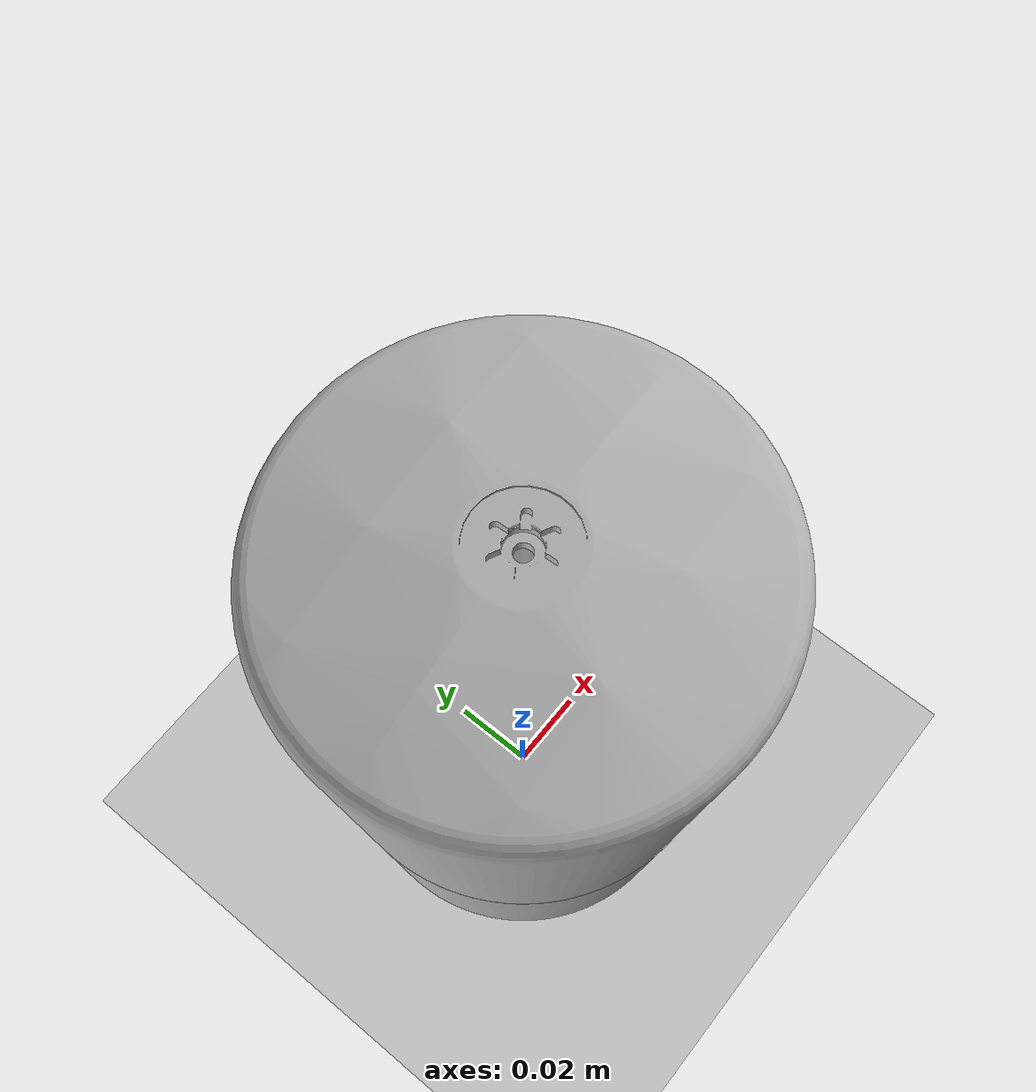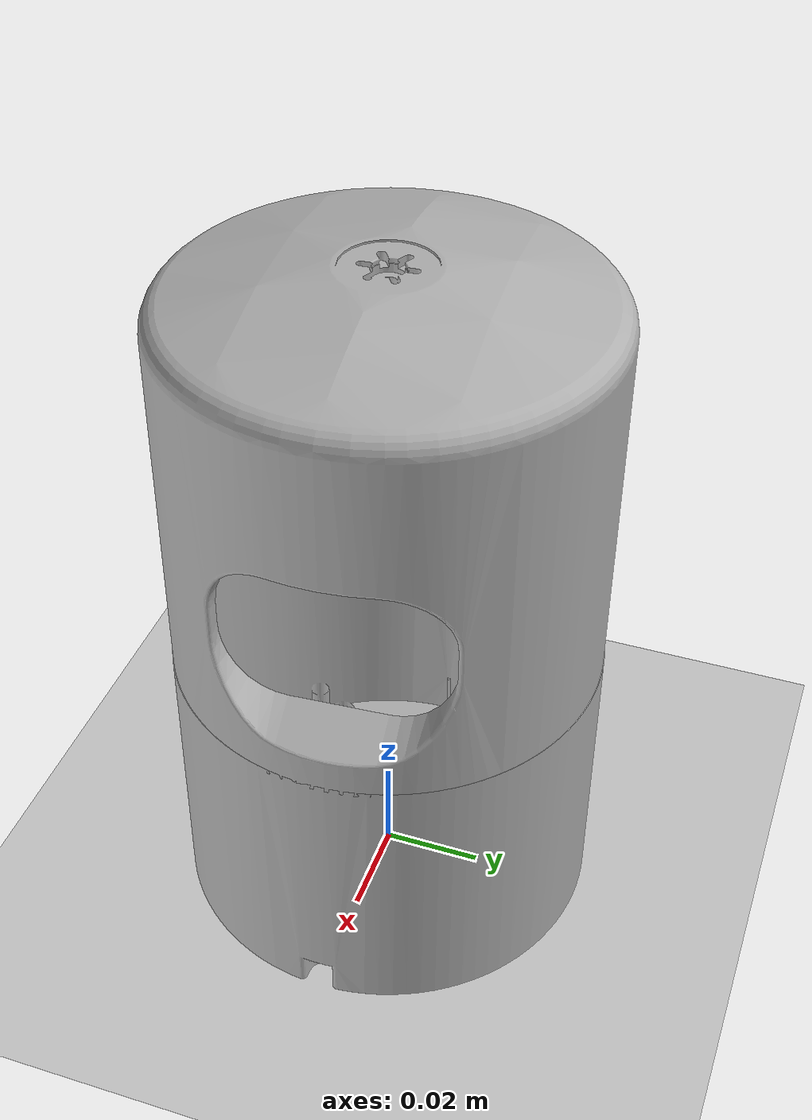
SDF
<?xml version="1.0" ?>
<sdf version="1.5">
    <world name="default">
        <!-- A global light source -->
        <include>
            <uri>model://sun</uri>
        </include>
        <!-- A ground plane -->
        <include>
            <uri>model://ground_plane</uri>
        </include>

        <!-- A testing model that includes the Velodyne sensor model -->
        <model name="my_velodyne">
            <include>
                <uri>model://velodyne_hdl32</uri>
            </include>

            <!-- Attach the plugin to this model -->
            <plugin name="velodyne_control" filename="libvelodyne_plugin.so">
                 <velocity>25</velocity>
            </plugin>
        </model>

    </world>
</sdf>

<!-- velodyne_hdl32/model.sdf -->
<sdf version="1.5">
    <model name="velodyne_hdl-32">
        <!-- Give the base link a unique name -->
        <link name="base">

            <!-- Offset the base by half the lenght of the cylinder -->
            <pose>0 0 0.029335 0 0 0</pose>

            <inertial>
                <mass>1.2</mass>
                <inertia>
                    <ixx>0.001087473</ixx>
                    <iyy>0.001087473</iyy>
                    <izz>0.001092437</izz>
                    <ixy>0</ixy>
                    <ixz>0</ixz>
                    <iyz>0</iyz>
                </inertia>
            </inertial>

            <collision name="base_collision">
                <geometry>
                    <cylinder>
                        <!-- Radius and length provided by Velodyne -->
                        <radius>.04267</radius>
                        <length>.05867</length>
                    </cylinder>
                </geometry>
            </collision>

            <!-- The visual is mostly a copy of the collision -->
            <visual name="base_visual">
                <!-- Offset the visual by have the base's height. We are not rotating mesh since symmetrical -->
                <pose>0 0 -0.029335 0 0 0</pose>
                <geometry>
                    <mesh>
                        <uri>model://velodyne_hdl32/meshes/velodyne_base.dae</uri>
                    </mesh>
                </geometry>
            </visual>
        </link>

        <!-- Give the base link a unique name -->
        <link name="top">

            <!-- Vertically offset the top cylinder by the length of the bottom
            cylinder and half the length of this cylinder. -->
            <pose>0 0 0.095455 0 0 0</pose>

            <inertial>
                <mass>0.1</mass>
                <inertia>
                    <ixx>0.000090623</ixx>
                    <iyy>0.000090623</iyy>
                    <izz>0.000091036</izz>
                    <ixy>0</ixy>
                    <ixz>0</ixz>
                    <iyz>0</iyz>
                </inertia>
            </inertial>

            <collision name="top_collision">
                <geometry>
                    <cylinder>
                        <!-- Radius and length provided by Velodyne -->
                        <radius>0.04267</radius>
                        <length>0.07357</length>
                    </cylinder>
                </geometry>
            </collision>

            <!-- The visual is mostly a copy of the collision -->
            <visual name="top_visual">
                <!-- Lower the mesh by half the height, and rotate by 90 degrees -->
                <pose>0 0 -0.0376785 0 0 1.5707</pose>
                <geometry>
                    <!-- The mesh tag indicates that we will use a 3D mesh as a visual -->
                    <mesh>
                        <!-- The URI should refer to the 3D mesh. The "model:"
                        URI scheme indicates that the we are referencing a Gazebo
                        model. -->
                        <uri>model://velodyne_hdl32/meshes/velodyne_top.dae</uri>
                    </mesh>
                </geometry>
            </visual>

            <!-- Add a ray sensor, and give it a name -->
            <sensor type="ray" name="sensor">

                <pose>0 0 -0.004645 1.5707 0 0</pose>

                <!-- Enable visualization to see the rays in the GUI -->
                <visualize>true</visualize>

                <!-- Set the update rate of the sensor -->
                <update_rate>30</update_rate>

                <ray>
                    <noise>
                        <!-- Use gaussian noise -->
                        <type>gaussian</type>
                        <mean>0.0</mean>
                        <stddev>0.02</stddev>
                    </noise>
                    <!-- The scan element contains the horizontal and vertical beams.
                    We are leaving out the vertical beams for this tutorial. -->
                    <scan>

                        <!-- The horizontal beams -->
                        <horizontal>
                            <!-- The velodyne has 32 beams(samples) -->
                            <samples>32</samples>

                            <resolution>1</resolution>

                            <!-- Minimum angle in radians -->
                            <min_angle>-0.53529248</min_angle>

                            <!-- Maximum angle in radians -->
                            <max_angle>0.18622663</max_angle>
                        </horizontal>
                    </scan>

                    <!-- Range defines characteristics of an individual beam -->
                    <range>

                        <!-- Minimum distance of the beam -->
                        <min>0.05</min>

                        <!-- Maximum distance of the beam -->
                        <max>70</max>

                        <!-- Linear resolution of the beam -->
                        <resolution>0.02</resolution>
                    </range>
                </ray>
            </sensor>
        </link>

        <!-- Each joint must have a unique name -->
        <joint type="revolute" name="joint">

            <!-- Position the joint at the bottom of the top link -->
            <pose>0 0 -0.036785 0 0 0</pose>

            <!-- Use the base link as the parent of the joint -->
            <parent>base</parent>

            <!-- Use the top link as the child of the joint -->
            <child>top</child>

            <!-- The axis defines the joint's degree of freedom -->
            <axis>
                <!-- Revolve around the z-axis -->
                <xyz>0 0 1</xyz>

                <!-- Limit refers to the range of motion of the joint -->
                <limit>
                    <!-- Use a very large number to indicate a continuous revolution -->
                    <lower>-10000000000000000</lower>
                    <upper>10000000000000000</upper>
                </limit>
            </axis>
        </joint>
    </model>
</sdf>
